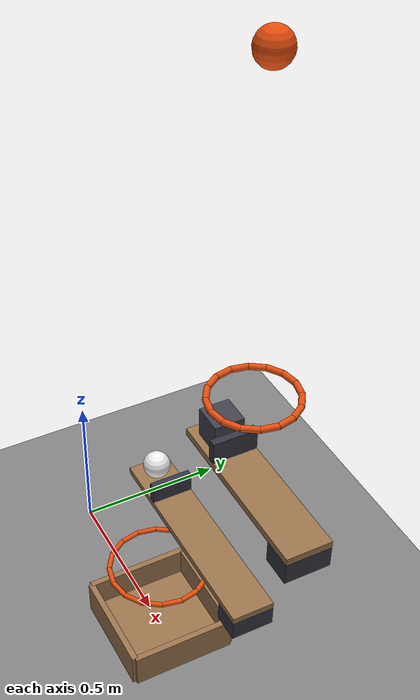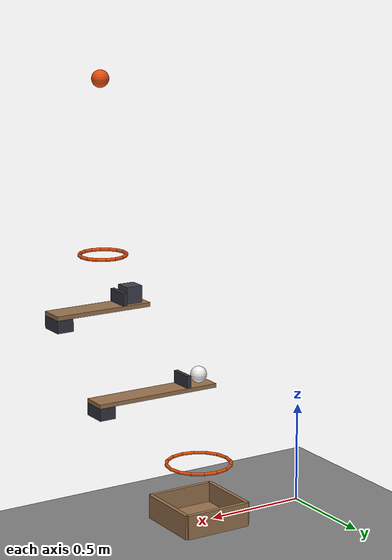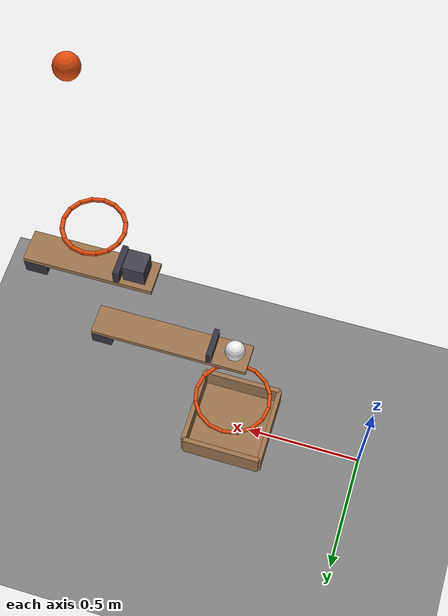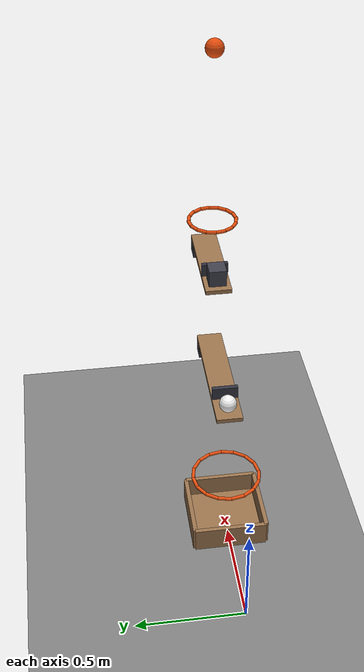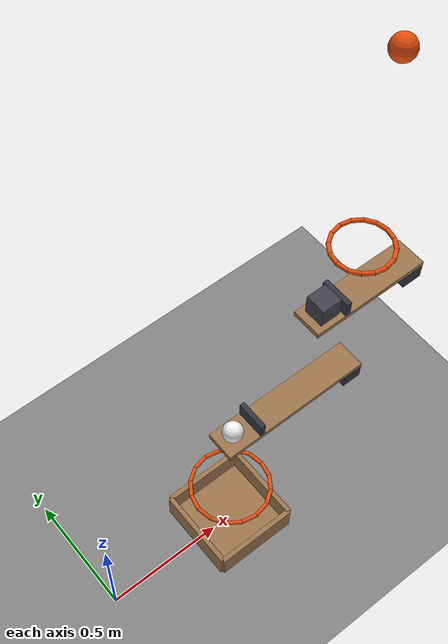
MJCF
<mujoco model="two_flap_relay">
  <compiler angle="radian"/>
  <option timestep="0.002"/>
  <worldbody>
    <geom name="floor" type="plane" size="8 8 0.1" friction="0.8 0.005 0.002"/>
    <body name="cup">
      <geom name="cup_base" type="box" pos="0.58 0 0.01" size="0.17 0.17 0.01" rgba="0.6 0.45 0.3 1"/>
      <geom name="cup_near_wall" type="box" pos="0.41 0 0.06" size="0.01 0.17 0.06" rgba="0.6 0.45 0.3 1"/>
      <geom name="cup_far_wall" type="box" pos="0.75 0 0.06" size="0.01 0.17 0.06" rgba="0.6 0.45 0.3 1"/>
      <geom name="cup_left_wall" type="box" pos="0.58 0.17 0.06" size="0.17 0.01 0.06" rgba="0.6 0.45 0.3 1"/>
      <geom name="cup_right_wall" type="box" pos="0.58 -0.17 0.06" size="0.17 0.01 0.06" rgba="0.6 0.45 0.3 1"/>
    </body>
    <body name="hoop2">
      <geom name="hoop2_00" type="capsule" size="0.008" fromto="0.738 0 0.3 0.725973 0.060464 0.3" rgba="0.9 0.3 0.05 1"/>
      <geom name="hoop2_01" type="capsule" size="0.008" fromto="0.725973 0.060464 0.3 0.691723 0.111723 0.3" rgba="0.9 0.3 0.05 1"/>
      <geom name="hoop2_02" type="capsule" size="0.008" fromto="0.691723 0.111723 0.3 0.640464 0.145973 0.3" rgba="0.9 0.3 0.05 1"/>
      <geom name="hoop2_03" type="capsule" size="0.008" fromto="0.640464 0.145973 0.3 0.58 0.158 0.3" rgba="0.9 0.3 0.05 1"/>
      <geom name="hoop2_04" type="capsule" size="0.008" fromto="0.58 0.158 0.3 0.519536 0.145973 0.3" rgba="0.9 0.3 0.05 1"/>
      <geom name="hoop2_05" type="capsule" size="0.008" fromto="0.519536 0.145973 0.3 0.468277 0.111723 0.3" rgba="0.9 0.3 0.05 1"/>
      <geom name="hoop2_06" type="capsule" size="0.008" fromto="0.468277 0.111723 0.3 0.434027 0.060464 0.3" rgba="0.9 0.3 0.05 1"/>
      <geom name="hoop2_07" type="capsule" size="0.008" fromto="0.434027 0.060464 0.3 0.422 1.93494e-17 0.3" rgba="0.9 0.3 0.05 1"/>
      <geom name="hoop2_08" type="capsule" size="0.008" fromto="0.422 1.93494e-17 0.3 0.434027 -0.060464 0.3" rgba="0.9 0.3 0.05 1"/>
      <geom name="hoop2_09" type="capsule" size="0.008" fromto="0.434027 -0.060464 0.3 0.468277 -0.111723 0.3" rgba="0.9 0.3 0.05 1"/>
      <geom name="hoop2_10" type="capsule" size="0.008" fromto="0.468277 -0.111723 0.3 0.519536 -0.145973 0.3" rgba="0.9 0.3 0.05 1"/>
      <geom name="hoop2_11" type="capsule" size="0.008" fromto="0.519536 -0.145973 0.3 0.58 -0.158 0.3" rgba="0.9 0.3 0.05 1"/>
      <geom name="hoop2_12" type="capsule" size="0.008" fromto="0.58 -0.158 0.3 0.640464 -0.145973 0.3" rgba="0.9 0.3 0.05 1"/>
      <geom name="hoop2_13" type="capsule" size="0.008" fromto="0.640464 -0.145973 0.3 0.691723 -0.111723 0.3" rgba="0.9 0.3 0.05 1"/>
      <geom name="hoop2_14" type="capsule" size="0.008" fromto="0.691723 -0.111723 0.3 0.725973 -0.060464 0.3" rgba="0.9 0.3 0.05 1"/>
      <geom name="hoop2_15" type="capsule" size="0.008" fromto="0.725973 -0.060464 0.3 0.738 -3.86988e-17 0.3" rgba="0.9 0.3 0.05 1"/>
    </body>
    <body name="flap2" pos="1 0 0.7">
      <joint name="flap2_hinge" type="hinge" pos="0 0 0" axis="0 1 0" limited="true" range="-0.785398 0" damping="0.005"/>
      <geom name="flap2" type="box" pos="-0.165 0 0" size="0.315 0.06 0.01" mass="0.15" friction="0.3 0.005 0.0001" rgba="0.6 0.45 0.3 1"/>
      <geom name="flap2 lip" type="box" pos="-0.33 0 0.04" size="0.01 0.06 0.03" mass="0.02" rgba="0.2 0.2 0.25 1"/>
      <geom name="flap2 weight" type="box" pos="0.11 0 -0.04" size="0.04 0.06 0.03" mass="0.8" rgba="0.2 0.2 0.25 1"/>
    </body>
    <body name="ball2" pos="0.58 0 0.75">
      <freejoint/>
      <geom name="ball2" type="sphere" pos="0 0 0" size="0.04" mass="0.1" condim="6" friction="0.5 0.005 0.01" solref="0.01 1" rgba="0.95 0.95 0.95 1"/>
    </body>
    <body name="flap1" pos="1.21 0 1.15">
      <joint name="flap1_hinge" type="hinge" pos="0 0 0" axis="0 1 0" limited="true" range="-0.610865 0" damping="0.005"/>
      <geom name="flap1" type="box" pos="-0.09 0 0" size="0.24 0.06 0.01" mass="0.1" friction="0.3 0.005 0.0001" rgba="0.6 0.45 0.3 1"/>
      <geom name="flap1 lip" type="box" pos="-0.2 0 0.04" size="0.01 0.06 0.03" mass="0.02" rgba="0.2 0.2 0.25 1"/>
      <geom name="flap1 weight" type="box" pos="0.11 0 -0.04" size="0.04 0.06 0.03" mass="1.2" rgba="0.2 0.2 0.25 1"/>
    </body>
    <body name="block" pos="0.95 0 1.2">
      <freejoint/>
      <geom name="block" type="box" pos="0 0 0" size="0.04 0.04 0.04" mass="0.4" friction="0.3 0.005 0.0001" solref="0.01 1" rgba="0.25 0.25 0.3 1"/>
    </body>
    <body name="hoop1">
      <geom name="hoop1_00" type="capsule" size="0.008" fromto="1.198 0 1.4 1.18978 0.0413298 1.4" rgba="0.9 0.3 0.05 1"/>
      <geom name="hoop1_01" type="capsule" size="0.008" fromto="1.18978 0.0413298 1.4 1.16637 0.0763675 1.4" rgba="0.9 0.3 0.05 1"/>
      <geom name="hoop1_02" type="capsule" size="0.008" fromto="1.16637 0.0763675 1.4 1.13133 0.099779 1.4" rgba="0.9 0.3 0.05 1"/>
      <geom name="hoop1_03" type="capsule" size="0.008" fromto="1.13133 0.099779 1.4 1.09 0.108 1.4" rgba="0.9 0.3 0.05 1"/>
      <geom name="hoop1_04" type="capsule" size="0.008" fromto="1.09 0.108 1.4 1.04867 0.099779 1.4" rgba="0.9 0.3 0.05 1"/>
      <geom name="hoop1_05" type="capsule" size="0.008" fromto="1.04867 0.099779 1.4 1.01363 0.0763675 1.4" rgba="0.9 0.3 0.05 1"/>
      <geom name="hoop1_06" type="capsule" size="0.008" fromto="1.01363 0.0763675 1.4 0.990221 0.0413298 1.4" rgba="0.9 0.3 0.05 1"/>
      <geom name="hoop1_07" type="capsule" size="0.008" fromto="0.990221 0.0413298 1.4 0.982 1.32262e-17 1.4" rgba="0.9 0.3 0.05 1"/>
      <geom name="hoop1_08" type="capsule" size="0.008" fromto="0.982 1.32262e-17 1.4 0.990221 -0.0413298 1.4" rgba="0.9 0.3 0.05 1"/>
      <geom name="hoop1_09" type="capsule" size="0.008" fromto="0.990221 -0.0413298 1.4 1.01363 -0.0763675 1.4" rgba="0.9 0.3 0.05 1"/>
      <geom name="hoop1_10" type="capsule" size="0.008" fromto="1.01363 -0.0763675 1.4 1.04867 -0.099779 1.4" rgba="0.9 0.3 0.05 1"/>
      <geom name="hoop1_11" type="capsule" size="0.008" fromto="1.04867 -0.099779 1.4 1.09 -0.108 1.4" rgba="0.9 0.3 0.05 1"/>
      <geom name="hoop1_12" type="capsule" size="0.008" fromto="1.09 -0.108 1.4 1.13133 -0.099779 1.4" rgba="0.9 0.3 0.05 1"/>
      <geom name="hoop1_13" type="capsule" size="0.008" fromto="1.13133 -0.099779 1.4 1.16637 -0.0763675 1.4" rgba="0.9 0.3 0.05 1"/>
      <geom name="hoop1_14" type="capsule" size="0.008" fromto="1.16637 -0.0763675 1.4 1.18978 -0.0413298 1.4" rgba="0.9 0.3 0.05 1"/>
      <geom name="hoop1_15" type="capsule" size="0.008" fromto="1.18978 -0.0413298 1.4 1.198 -2.64524e-17 1.4" rgba="0.9 0.3 0.05 1"/>
    </body>
    <body name="ball1" pos="1.09 0 2.2">
      <freejoint/>
      <geom name="ball1" type="sphere" pos="0 0 0" size="0.04" mass="0.5" condim="6" friction="0.5 0.005 0.004" solref="0.01 1" rgba="0.9 0.3 0.05 1"/>
    </body>
  </worldbody>
  <keyframe>
    <key name="start" qpos="0 0.58 0 0.75 1 0 0 0 0 0.95 0 1.2 1 0 0 0 1.09 0 2.2 1 0 0 0" qvel="0 0 0 0 0 0 0 0 0 0 0 0 0 0 0 0 0 0 0 0"/>
  </keyframe>
</mujoco>
